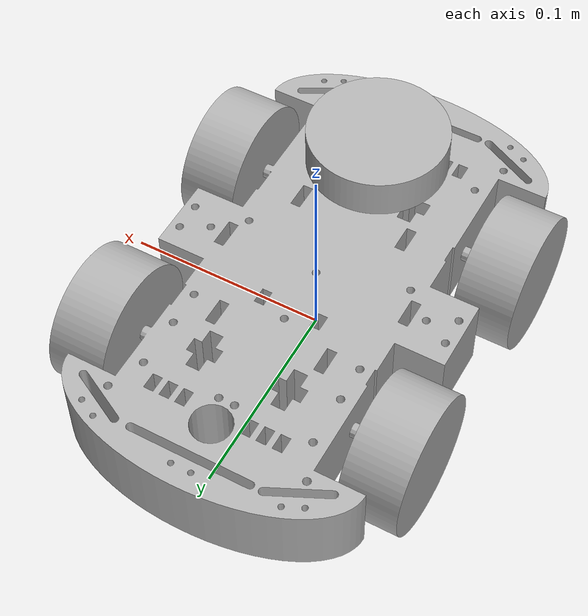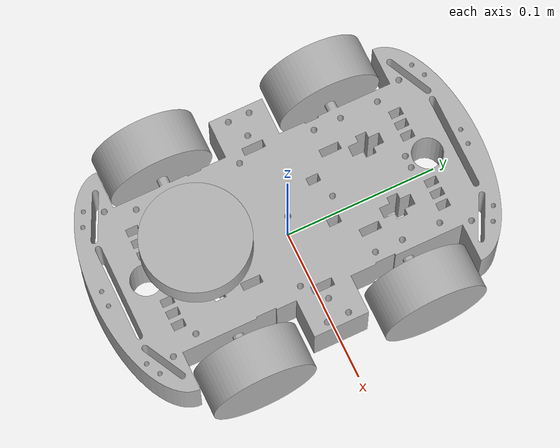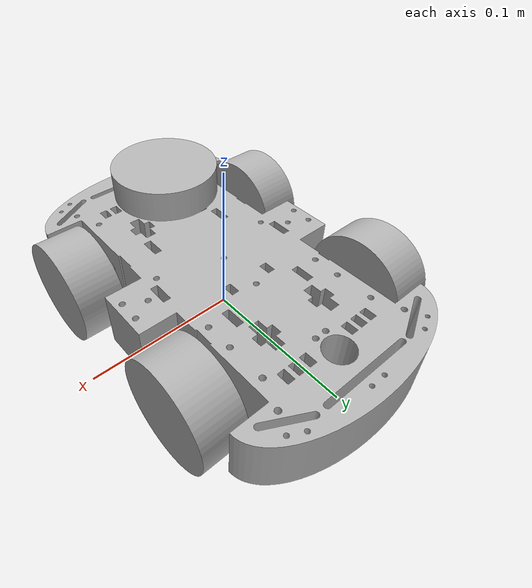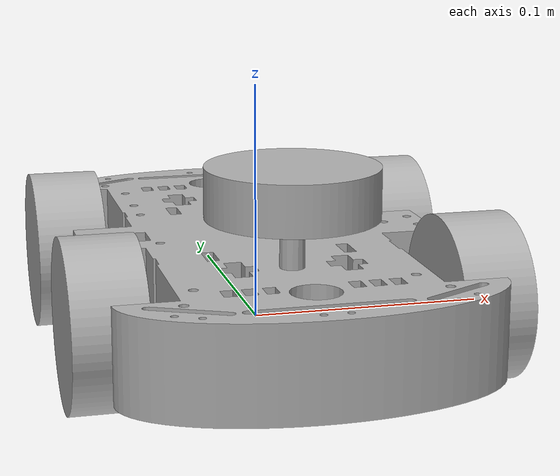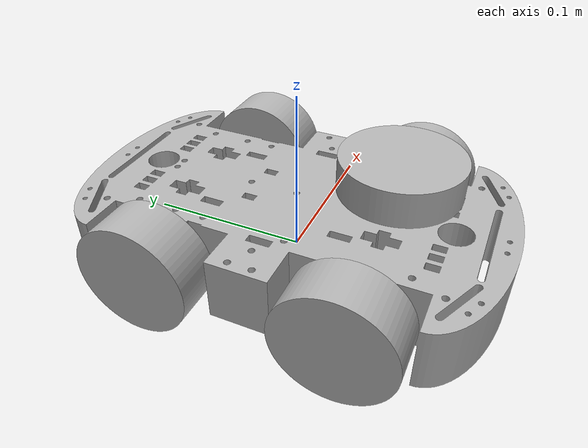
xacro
<?xml version="1.0" ?>
<robot name="Car_design_model" xmlns:xacro="http://www.ros.org/wiki/xacro">

<xacro:include filename="$(find Car_design_model_description)/urdf/materials.xacro" />
<xacro:include filename="$(find Car_design_model_description)/urdf/Car_design_model.trans" />
<xacro:include filename="$(find Car_design_model_description)/urdf/Car_design_model.gazebo" />
<link name="base_link">
  <inertial>
    <origin xyz="-4.730425624076588e-05 -0.0004116747923087092 0.01904852066420646" rpy="0 0 0"/>
    <mass value="7.416800635961257"/>
    <inertia ixx="0.03775" iyy="0.010039" izz="0.045988" ixy="1e-06" iyz="2.1e-05" ixz="-0.0"/>
  </inertial>
  <visual>
    <origin xyz="0 0 0" rpy="0 0 0"/>
    <geometry>
      <mesh filename="package://Car_design_model_description/meshes/base_link.stl" scale="0.001 0.001 0.001"/>
    </geometry>
    <material name="silver"/>
  </visual>
  <collision>
    <origin xyz="0 0 0" rpy="0 0 0"/>
    <geometry>
      <mesh filename="package://Car_design_model_description/meshes/base_link.stl" scale="0.001 0.001 0.001"/>
    </geometry>
  </collision>
</link>

<link name="back_right_wheel_1">
  <inertial>
    <origin xyz="-0.014500000000000055 0.0 3.469446951953614e-18" rpy="0 0 0"/>
    <mass value="0.0979464394706181"/>
    <inertia ixx="5.7e-05" iyy="3.5e-05" izz="3.5e-05" ixy="0.0" iyz="-0.0" ixz="0.0"/>
  </inertial>
  <visual>
    <origin xyz="0.06 -0.057 -0.02" rpy="0 0 0"/>
    <geometry>
      <mesh filename="package://Car_design_model_description/meshes/back_right_wheel_1.stl" scale="0.001 0.001 0.001"/>
    </geometry>
    <material name="silver"/>
  </visual>
  <collision>
    <origin xyz="0.06 -0.057 -0.02" rpy="0 0 0"/>
    <geometry>
      <mesh filename="package://Car_design_model_description/meshes/back_right_wheel_1.stl" scale="0.001 0.001 0.001"/>
    </geometry>
  </collision>
</link>

<link name="front_right_wheel_1">
  <inertial>
    <origin xyz="-0.014500000000000055 6.938893903907228e-18 3.469446951953614e-18" rpy="0 0 0"/>
    <mass value="0.0979464394706181"/>
    <inertia ixx="5.7e-05" iyy="3.5e-05" izz="3.5e-05" ixy="0.0" iyz="0.0" ixz="0.0"/>
  </inertial>
  <visual>
    <origin xyz="0.06 0.057 -0.02" rpy="0 0 0"/>
    <geometry>
      <mesh filename="package://Car_design_model_description/meshes/front_right_wheel_1.stl" scale="0.001 0.001 0.001"/>
    </geometry>
    <material name="silver"/>
  </visual>
  <collision>
    <origin xyz="0.06 0.057 -0.02" rpy="0 0 0"/>
    <geometry>
      <mesh filename="package://Car_design_model_description/meshes/front_right_wheel_1.stl" scale="0.001 0.001 0.001"/>
    </geometry>
  </collision>
</link>

<link name="front_left_wheel_1">
  <inertial>
    <origin xyz="0.014500000000000068 -2.0816681711721685e-17 -3.469446951953614e-18" rpy="0 0 0"/>
    <mass value="0.09794643947061814"/>
    <inertia ixx="5.7e-05" iyy="3.5e-05" izz="3.5e-05" ixy="-0.0" iyz="-0.0" ixz="0.0"/>
  </inertial>
  <visual>
    <origin xyz="-0.06 0.057 -0.02" rpy="0 0 0"/>
    <geometry>
      <mesh filename="package://Car_design_model_description/meshes/front_left_wheel_1.stl" scale="0.001 0.001 0.001"/>
    </geometry>
    <material name="silver"/>
  </visual>
  <collision>
    <origin xyz="-0.06 0.057 -0.02" rpy="0 0 0"/>
    <geometry>
      <mesh filename="package://Car_design_model_description/meshes/front_left_wheel_1.stl" scale="0.001 0.001 0.001"/>
    </geometry>
  </collision>
</link>

<link name="back_left_wheel_1">
  <inertial>
    <origin xyz="0.014500000000000068 2.0816681711721685e-17 -3.469446951953614e-18" rpy="0 0 0"/>
    <mass value="0.09794643947061814"/>
    <inertia ixx="5.7e-05" iyy="3.5e-05" izz="3.5e-05" ixy="0.0" iyz="0.0" ixz="0.0"/>
  </inertial>
  <visual>
    <origin xyz="-0.06 -0.057 -0.02" rpy="0 0 0"/>
    <geometry>
      <mesh filename="package://Car_design_model_description/meshes/back_left_wheel_1.stl" scale="0.001 0.001 0.001"/>
    </geometry>
    <material name="silver"/>
  </visual>
  <collision>
    <origin xyz="-0.06 -0.057 -0.02" rpy="0 0 0"/>
    <geometry>
      <mesh filename="package://Car_design_model_description/meshes/back_left_wheel_1.stl" scale="0.001 0.001 0.001"/>
    </geometry>
  </collision>
</link>

<link name="lidar_1">
  <inertial>
    <origin xyz="-3.913023829559114e-18 -6.938893903907228e-18 0.010000000000000002" rpy="0 0 0"/>
    <mass value="0.5701739338853186"/>
    <inertia ixx="0.000184" iyy="0.000184" izz="0.00033" ixy="0.0" iyz="0.0" ixz="0.0"/>
  </inertial>
  <visual>
    <origin xyz="-0.0 0.060125 -0.058" rpy="0 0 0"/>
    <geometry>
      <mesh filename="package://Car_design_model_description/meshes/lidar_1.stl" scale="0.001 0.001 0.001"/>
    </geometry>
    <material name="silver"/>
  </visual>
  <collision>
    <origin xyz="-0.0 0.060125 -0.058" rpy="0 0 0"/>
    <geometry>
      <mesh filename="package://Car_design_model_description/meshes/lidar_1.stl" scale="0.001 0.001 0.001"/>
    </geometry>
  </collision>
</link>

<joint name="Revolute 1" type="continuous">
  <origin xyz="-0.06 0.057 0.02" rpy="0 0 0"/>
  <parent link="base_link"/>
  <child link="back_right_wheel_1"/>
  <axis xyz="-1.0 -0.0 0.0"/>
</joint>

<joint name="Revolute 2" type="continuous">
  <origin xyz="-0.06 -0.057 0.02" rpy="0 0 0"/>
  <parent link="base_link"/>
  <child link="front_right_wheel_1"/>
  <axis xyz="-1.0 0.0 0.0"/>
</joint>

<joint name="Revolute 3" type="continuous">
  <origin xyz="0.06 -0.057 0.02" rpy="0 0 0"/>
  <parent link="base_link"/>
  <child link="front_left_wheel_1"/>
  <axis xyz="1.0 0.0 0.0"/>
</joint>

<joint name="Revolute 4" type="continuous">
  <origin xyz="0.06 0.057 0.02" rpy="0 0 0"/>
  <parent link="base_link"/>
  <child link="back_left_wheel_1"/>
  <axis xyz="1.0 -0.0 0.0"/>
</joint>

<joint name="Rigid 5" type="fixed">
  <origin xyz="0.0 -0.060125 0.058" rpy="0 0 0"/>
  <parent link="base_link"/>
  <child link="lidar_1"/>
</joint>

</robot>

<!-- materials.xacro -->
<robot name="Car_design_model" xmlns:xacro="http://www.ros.org/wiki/xacro" >

<material name="silver">
  <color rgba="0.700 0.700 0.700 1.000"/>
</material>

</robot>

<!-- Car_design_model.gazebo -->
<robot name="Car_design_model" xmlns:xacro="http://www.ros.org/wiki/xacro" >

<xacro:property name="body_color" value="Gazebo/Silver" />

<gazebo>
  <plugin name="control" filename="libgazebo_ros_control.so"/>
</gazebo>
<gazebo reference="base_link">
  <material>${body_color}</material>
  <mu1>0.2</mu1>
  <mu2>0.2</mu2>
  <selfCollide>true</selfCollide>
  <gravity>true</gravity>
</gazebo>

<gazebo reference="back_right_wheel_1">
  <material>${body_color}</material>
  <mu1>0.2</mu1>
  <mu2>0.2</mu2>
  <selfCollide>true</selfCollide>
</gazebo>

<gazebo reference="front_right_wheel_1">
  <material>${body_color}</material>
  <mu1>0.2</mu1>
  <mu2>0.2</mu2>
  <selfCollide>true</selfCollide>
</gazebo>

<gazebo reference="front_left_wheel_1">
  <material>${body_color}</material>
  <mu1>0.2</mu1>
  <mu2>0.2</mu2>
  <selfCollide>true</selfCollide>
</gazebo>

<gazebo reference="back_left_wheel_1">
  <material>${body_color}</material>
  <mu1>0.2</mu1>
  <mu2>0.2</mu2>
  <selfCollide>true</selfCollide>
</gazebo>

<gazebo reference="lidar_1">
  <material>${body_color}</material>
  <mu1>0.2</mu1>
  <mu2>0.2</mu2>
  <selfCollide>true</selfCollide>
</gazebo>

</robot>
